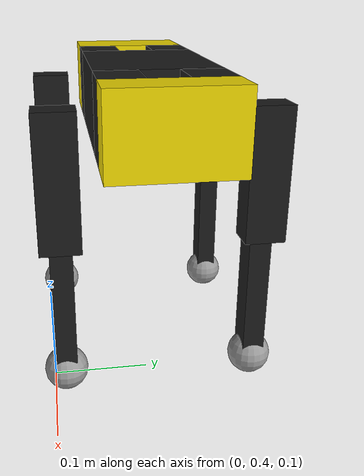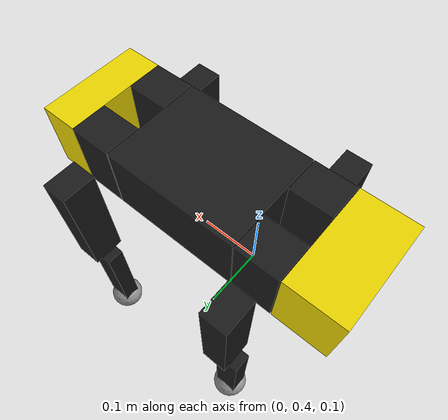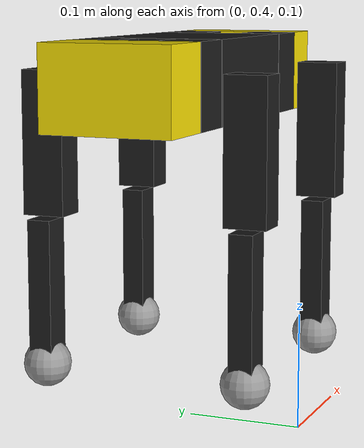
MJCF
<mujoco model="SpotMicroAI">
  <compiler angle="radian"/>

  <worldbody>
      <body name="base_link" pos="0 0.5 0.4">
          <freejoint/> <inertial pos="0 0 0" mass="2.8" diaginertia="0.01 0.01 0.01"/>
    <geom size="0.07 0.055 0.035" type="box" rgba="0.1 0.1 0.1 1"/>
    <geom size="0.02 0.055 0.035" pos="0.135 0 0" type="box" rgba="0.92 0.83 0 1"/>
    <geom size="0.029 0.055 0.035" pos="-0.145 0 0" type="box" rgba="0.92 0.83 0 1"/>
    <body name="front_left_shoulder_link" pos="-0.093 -0.036 0">
      <inertial pos="0 0 0" mass="0.1" diaginertia="100 100 100"/>
      <joint name="front_left_shoulder" pos="0 0 0" axis="1 0 0" range="-0.548 0.548" actuatorfrcrange="-1000 1000" frictionloss="0.5"/>
      <geom size="0.022 0.019 0.035" type="box" rgba="0.1 0.1 0.1 1"/>
      <body name="front_left_leg_link" pos="0 -0.052 0">
        <inertial pos="0 0 0" mass="0.15" diaginertia="1000 1000 1000"/>
        <joint name="front_left_leg" pos="0 0 0" axis="0 1 0" range="-2.666 1.548" actuatorfrcrange="-1000 1000"/>
        <geom size="0.014 0.018 0.06" pos="0 0 -0.05" type="box" rgba="0.1 0.1 0.1 1"/>
        <body name="front_left_foot_link" pos="-0.01 0 -0.12">
          <inertial pos="0 0 -0.0383333" mass="0.15" diaginertia="2000 2000 2000"/>
          <joint name="front_left_foot" pos="0 0 0" axis="0 1 0" range="-0.1 2.59" actuatorfrcrange="-1000 1000" frictionloss="0.5"/>
          <geom size="0.013 0.01 0.0575" pos="0 0 -0.05" type="box" rgba="0.1 0.1 0.1 1"/>
          <geom size="0.02" pos="0 0 -0.115" rgba="0.6 0.6 0.6 1"/>
        </body>
      </body>
    </body>
    <body name="front_right_shoulder_link" pos="-0.093 0.036 0">
      <inertial pos="0 0 0" mass="0.1" diaginertia="100 100 100"/>
      <joint name="front_right_shoulder" pos="0 0 0" axis="1 0 0" range="-0.548 0.548" actuatorfrcrange="-1000 1000" frictionloss="0.5"/>
      <geom size="0.022 0.019 0.035" type="box" rgba="0.1 0.1 0.1 1"/>
      <body name="front_right_leg_link" pos="0 0.052 0">
        <inertial pos="0 0 0" mass="0.15" diaginertia="1000 1000 1000"/>
        <joint name="front_right_leg" pos="0 0 0" axis="0 1 0" range="-2.666 1.548" actuatorfrcrange="-1000 1000"/>
        <geom size="0.014 0.018 0.06" pos="0 0 -0.05" type="box" rgba="0.1 0.1 0.1 1"/>
        <body name="front_right_foot_link" pos="-0.01 0 -0.12">
          <inertial pos="0 0 -0.0383333" mass="0.15" diaginertia="2000 2000 2000"/>
          <joint name="front_right_foot" pos="0 0 0" axis="0 1 0" range="-0.1 2.59" actuatorfrcrange="-1000 1000" frictionloss="0.5"/>
          <geom size="0.013 0.01 0.0575" pos="0 0 -0.05" type="box" rgba="0.1 0.1 0.1 1"/>
          <geom size="0.02" pos="0 0 -0.115" rgba="0.6 0.6 0.6 1"/>
        </body>
      </body>
    </body>
    <body name="rear_left_shoulder_link" pos="0.093 -0.036 0">
      <inertial pos="0 0 0" mass="0.1" diaginertia="100 100 100"/>
      <joint name="rear_left_shoulder" pos="0 0 0" axis="1 0 0" range="-0.548 0.548" actuatorfrcrange="-1000 1000" frictionloss="0.5"/>
      <geom size="0.022 0.019 0.035" type="box" rgba="0.1 0.1 0.1 1"/>
      <body name="rear_left_leg_link" pos="0 -0.052 0">
        <inertial pos="0 0 0" mass="0.15" diaginertia="1000 1000 1000"/>
        <joint name="rear_left_leg" pos="0 0 0" axis="0 1 0" range="-2.666 1.548" actuatorfrcrange="-1000 1000"/>
        <geom size="0.014 0.018 0.06" pos="0 0 -0.05" type="box" rgba="0.1 0.1 0.1 1"/>
        <body name="rear_left_foot_link" pos="-0.01 0 -0.12">
          <inertial pos="0 0 -0.0383333" mass="0.15" diaginertia="2000 2000 2000"/>
          <joint name="rear_left_foot" pos="0 0 0" axis="0 1 0" range="-0.1 2.59" actuatorfrcrange="-1000 1000" frictionloss="0.5"/>
          <geom size="0.013 0.01 0.0575" pos="0 0 -0.05" type="box" rgba="0.1 0.1 0.1 1"/>
          <geom size="0.02" pos="0 0 -0.115" rgba="0.6 0.6 0.6 1"/>
        </body>
      </body>
    </body>
    <body name="rear_right_shoulder_link" pos="0.093 0.036 0">
      <inertial pos="0 0 0" mass="0.1" diaginertia="100 100 100"/>
      <joint name="rear_right_shoulder" pos="0 0 0" axis="1 0 0" range="-0.548 0.548" actuatorfrcrange="-1000 1000" frictionloss="0.5"/>
      <geom size="0.022 0.019 0.035" type="box" rgba="0.1 0.1 0.1 1"/>
      <body name="rear_right_leg_link" pos="0 0.052 0">
        <inertial pos="0 0 0" mass="0.15" diaginertia="1000 1000 1000"/>
        <joint name="rear_right_leg" pos="0 0 0" axis="0 1 0" range="-2.666 1.548" actuatorfrcrange="-1000 1000"/>
        <geom size="0.014 0.018 0.06" pos="0 0 -0.05" type="box" rgba="0.1 0.1 0.1 1"/>
        <body name="rear_right_foot_link" pos="-0.01 0 -0.12">
          <inertial pos="0 0 -0.0383333" mass="0.15" diaginertia="2000 2000 2000"/>
          <joint name="rear_right_foot" pos="0 0 0" axis="0 1 0" range="-0.1 2.59" actuatorfrcrange="-1000 1000" frictionloss="0.5"/>
          <geom size="0.013 0.01 0.0575" pos="0 0 -0.05" type="box" rgba="0.1 0.1 0.1 1"/>
          <geom size="0.02" pos="0 0 -0.115" rgba="0.6 0.6 0.6 1"/>
        </body>
      </body>
    </body>
      </body>
  </worldbody>

  <actuator>
    <position name="fl_shoulder" joint="front_left_shoulder" kp="100"/>
    <position name="fl_leg" joint="front_left_leg" kp="100"/>
    <position name="fl_foot" joint="front_left_foot" kp="100"/>

    <position name="fr_shoulder" joint="front_right_shoulder" kp="100"/>
    <position name="fr_leg" joint="front_right_leg" kp="100"/>
    <position name="fr_foot" joint="front_right_foot" kp="100"/>

    <position name="rl_shoulder" joint="rear_left_shoulder" kp="100"/>
    <position name="rl_leg" joint="rear_left_leg" kp="100"/>
    <position name="rl_foot" joint="rear_left_foot" kp="100"/>

    <position name="rr_shoulder" joint="rear_right_shoulder" kp="100"/>
    <position name="rr_leg" joint="rear_right_leg" kp="100"/>
    <position name="rr_foot" joint="rear_right_foot" kp="100"/>
  </actuator>
</mujoco>
